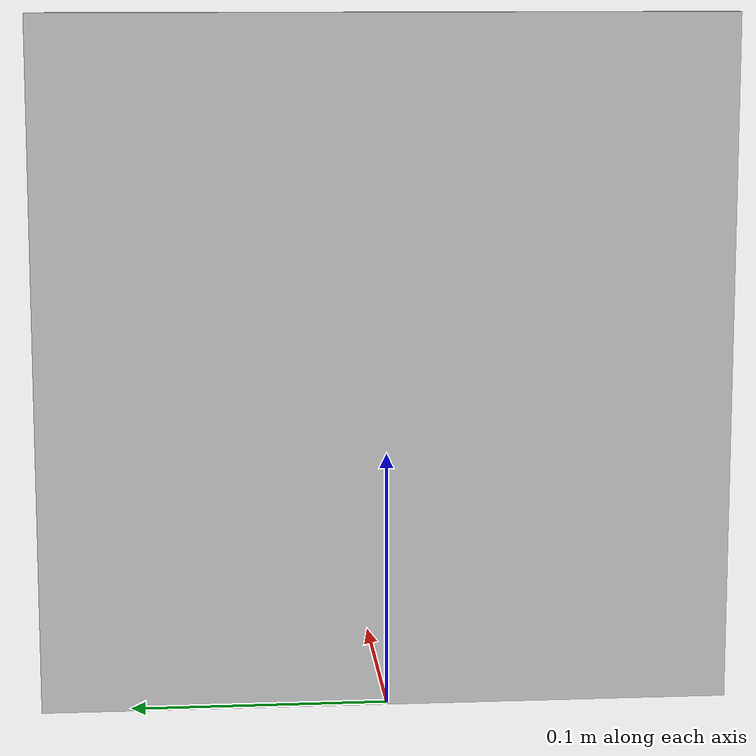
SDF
<?xml version="1.0" ?><sdf version="1.4">
  <model name="nested_aruco_4x4_in_orig">
    <static>true</static>
    <link name="link">
      <visual name="visual">
        <geometry>
          <mesh>
            <uri>model://nested_aruco_4x4_in_orig/meshes/nested_aruco_4x4_in_orig.dae</uri>
          <scale>0.538 0.538 0.538</scale></mesh>
        </geometry>
      </visual>
    </link>
  </model>
</sdf>
